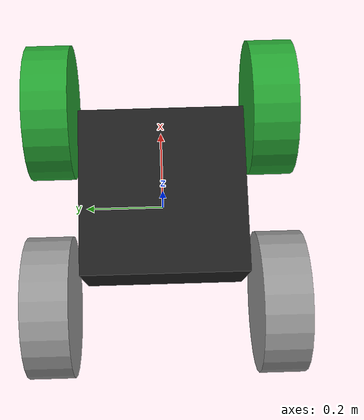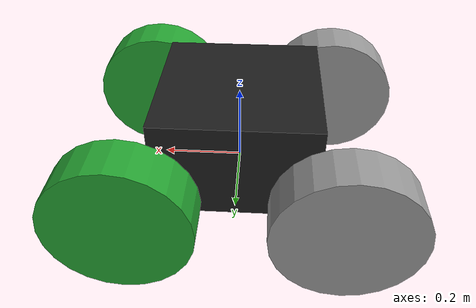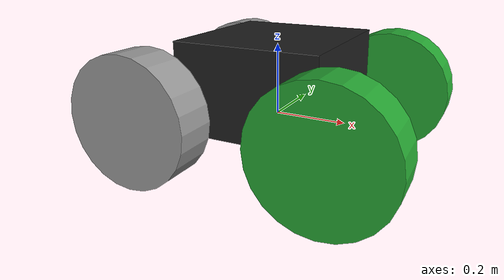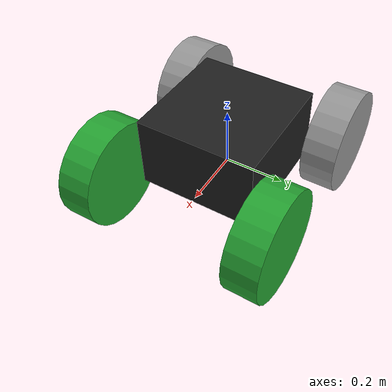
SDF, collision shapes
<?xml version="1.0" ?>
<sdf version="1.6">
  <model name="amov_car">
  <static>false</static>
    <link name="base_link">
      <pose>0 0 0.0 0 0 0</pose>
      <inertial>
        <mass>20.0</mass>
        <pose>0 0 0.0 0 0 0</pose>
        <inertia>
          <ixx>0.37</ixx>
          <ixy>0</ixy>
          <ixz>0</ixz>
          <iyy>0.37</iyy>
          <iyz>0</iyz>
          <izz>0.57</izz>
        </inertia>
      </inertial>
      <collision name="collision">
        <pose>0 0 0.1 0 0 0</pose>
        <geometry>
          <box>
            <size>0.4 0.4 0.25</size>
          </box>
        </geometry>
      </collision>
      <!-- 外观　－　底座 -->
      <visual name="base">
        <pose>0 0 0 0 0 0</pose>
        <geometry>
          <mesh>
            <uri>model://amov_car/meshes/base_link.stl</uri>
          </mesh>
        </geometry>
        <material>
          <script>
            <name>Gazebo/FlatBlack</name>
          </script>
        </material>
      </visual>
      <!--　外观　－　Top Plate -->
      <visual name="top_plate">
        <pose>0 0 0 0 0 0</pose>
        <geometry>
          <mesh>
            <uri>model://amov_car/meshes/top_plate.stl</uri>
          </mesh>
        </geometry>
        <material>
          <script>
            <name>Gazebo/Yellow</name>
          </script>
        </material>
      </visual>
      <!-- 外观　－　Front Bumper -->
      <visual name="front_bumper">
        <pose>0.47 0 0.091 0 0 0</pose>
        <geometry>
          <mesh>
            <uri>model://amov_car/meshes/bumper.stl</uri>
          </mesh>
        </geometry>
        <material>
          <script>
            <name>Gazebo/FlatBlack</name>
          </script>
        </material>
      </visual>
      <!-- 外观　－　Rear Bumper -->
      <visual name="rear_bumper">
        <pose>-0.47 0 0.091 0 0 3.141</pose>
        <geometry>
          <mesh>
            <uri>model://amov_car/meshes/bumper.stl</uri>
          </mesh>
        </geometry>
        <material>
          <script>
            <name>Gazebo/FlatBlack</name>
          </script>
        </material>
      </visual>
      <!-- 外观　－　User Rail -->
      <visual name="user_rail">
        <pose>0.272 0 0.245 0 0 0</pose>
        <geometry>
          <mesh>
            <uri>model://amov_car/meshes/user_rail.stl</uri>
          </mesh>
        </geometry>
        <material>
          <script>
            <name>Gazebo/Grey</name>
          </script>
        </material>
      </visual>
    </link>
    <!-- 关节　－　Back Left Wheel -->
    <link name="back_left_wheel">
      <pose>-0.256 0.285475 0.035 0 0 0</pose>
      <inertial>
        <mass>2.6357</mass>
        <pose>0 0 0 0 0 0</pose>
        <inertia>
          <ixx>0.0246688</ixx>
          <ixy>0</ixy>
          <ixz>0</ixz>
          <iyy>0.0246688</iyy>
          <iyz>0</iyz>
          <izz>0.0441058</izz>
        </inertia>
      </inertial>
      <collision name="back_left_wheel_collision">
        <pose>0 0 0 -1.5707 0 0</pose>
        <geometry>
          <cylinder>
            <radius>0.17775</radius>
            <length>0.1143</length>
          </cylinder>
        </geometry>
        <surface>
          <friction>
            <ode>
              <mu>1.0</mu>
              <mu2>0.45</mu2>
              <fdir1>1 0 0</fdir1>
              <slip1>0.0</slip1>
              <slip2>0.0</slip2>
            </ode>
          </friction>
        </surface>
      </collision>
      <visual name="back_left_wheel">
        <pose>0 0 0 -3.14159 0 0</pose>
        <geometry>
          <mesh>
            <uri>model://amov_car/meshes/wheel.stl</uri>
          </mesh>
        </geometry>
        <material>
          <script>
            <name>Gazebo/Grey</name>
          </script>
        </material>
      </visual>
    </link>
    <joint name="back_left_joint" type="revolute">
      <parent>base_link</parent>
      <child>back_left_wheel</child>
      <axis>
        <xyz>0 1 0</xyz>
        <use_parent_model_frame>true</use_parent_model_frame>
      </axis>
      <physics>
        <ode>
          <limit>
            <cfm>0.000000</cfm>
            <erp>0.900000</erp>
          </limit>
        </ode>
      </physics>
    </joint>
    <!-- 关节　－　Back Right Wheel -->
    <link name="back_right_wheel">
      <pose>-0.256 -0.285475 0.035 0 0 0</pose>
      <inertial>
        <mass>2.6357</mass>
        <pose>0 0 0 0 0 0</pose>
        <inertia>
          <ixx>0.0246688</ixx>
          <ixy>0</ixy>
          <ixz>0</ixz>
          <iyy>0.0246688</iyy>
          <iyz>0</iyz>
          <izz>0.0441058</izz>
        </inertia>
      </inertial>
      <collision name="back_right_wheel_collision">
        <pose>0 0 0 -1.5707 0 0</pose>
        <geometry>
          <cylinder>
            <radius>0.17775</radius>
            <length>0.1143</length>
          </cylinder>
        </geometry>
        <surface>
          <friction>
            <ode>
              <mu>100000.0</mu>
              <mu2>100000.0</mu2>
              <slip1>0.0</slip1>
              <slip2>0.0</slip2>
            </ode>
          </friction>
        </surface>
      </collision>
      <visual name="back_right_wheel">
        <pose>0 0 0 -3.14159 0 0</pose>
        <geometry>
          <mesh>
            <uri>model://amov_car/meshes/wheel.stl</uri>
          </mesh>
        </geometry>
        <material>
          <script>
            <name>Gazebo/Grey</name>
          </script>
        </material>
      </visual>
    </link>
    <joint name="back_right_joint" type="revolute">
      <parent>base_link</parent>
      <child>back_right_wheel</child>
      <axis>
        <xyz>0 1 0</xyz>
        <use_parent_model_frame>true</use_parent_model_frame>
      </axis>
      <physics>
        <ode>
          <limit>
            <cfm>0.000000</cfm>
            <erp>0.900000</erp>
          </limit>
        </ode>
      </physics>
    </joint>
    <!-- 关节　－　Front Left Wheel -->
    <link name="front_left_wheel">
      <pose>0.256 0.285475 0.035 0 0 0</pose>
      <inertial>
        <mass>2.6357</mass>
        <pose>0 0 0 0 0 0</pose>
        <inertia>
          <ixx>0.0246688</ixx>
          <ixy>0</ixy>
          <ixz>0</ixz>
          <iyy>0.0246688</iyy>
          <iyz>0</iyz>
          <izz>0.0441058</izz>
        </inertia>
      </inertial>
      <collision name="front_left_wheel_collision">
        <pose>0 0 0 -1.5707 0 0</pose>
        <geometry>
          <cylinder>
            <radius>0.17775</radius>
            <length>0.1143</length>
          </cylinder>
        </geometry>
        <surface>
          <friction>
            <ode>
              <mu>100000.0</mu>
              <mu2>100000.0</mu2>
              <slip1>0.0</slip1>
              <slip2>0.0</slip2>
            </ode>
          </friction>
        </surface>
      </collision>
      <visual name="front_left_wheel">
        <pose>0 0 0 -3.14159 0 0</pose>
        <geometry>
          <mesh>
            <uri>model://amov_car/meshes/wheel.stl</uri>
          </mesh>
        </geometry>
        <material>
          <script>
            <name>Gazebo/Green</name>
          </script>
        </material>
      </visual>
    </link>
    <joint name="front_left_joint" type="revolute">
      <parent>base_link</parent>
      <child>front_left_wheel</child>
      <axis>
        <xyz>0 1 0</xyz>
        <use_parent_model_frame>true</use_parent_model_frame>
      </axis>
      <physics>
        <ode>
          <limit>
            <cfm>0.000000</cfm>
            <erp>0.900000</erp>
          </limit>
        </ode>
      </physics>
    </joint>
    <!-- 关节　－　Front Right Wheel -->
    <link name="front_right_wheel">
      <pose>0.256 -0.285475 0.035 0 0 0</pose>
      <inertial>
        <mass>2.6357</mass>
        <pose>0 0 0 0 0 0</pose>
        <inertia>
          <ixx>0.0246688</ixx>
          <ixy>0</ixy>
          <ixz>0</ixz>
          <iyy>0.0246688</iyy>
          <iyz>0</iyz>
          <izz>0.0441058</izz>
        </inertia>
      </inertial>
      <collision name="front_right_wheel_collision">
        <pose>0 0 0 -1.5707 0 0</pose>
        <geometry>
          <cylinder>
            <radius>0.17775</radius>
            <length>0.1143</length>
          </cylinder>
        </geometry>
        <surface>
          <friction>
            <ode>
              <mu>100000.0</mu>
              <mu2>100000.0</mu2>
              <slip1>0.0</slip1>
              <slip2>0.0</slip2>
            </ode>
          </friction>
        </surface>
      </collision>
      <visual name="front_right_wheel">
        <pose>0 0 0 -3.14159 0 0</pose>
        <geometry>
          <mesh>
            <uri>model://amov_car/meshes/wheel.stl</uri>
          </mesh>
        </geometry>
        <material>
          <script>
            <name>Gazebo/Green</name>
          </script>
        </material>
      </visual>
    </link>
    <joint name="front_right_joint" type="revolute">
      <parent>base_link</parent>
      <child>front_right_wheel</child>
      <axis>
        <xyz>0 1 0</xyz>
        <use_parent_model_frame>true</use_parent_model_frame>
      </axis>
      <physics>
        <ode>
          <limit>
            <cfm>0.000000</cfm>
            <erp>0.900000</erp>
          </limit>
        </ode>
      </physics>
    </joint>
    <!-- IMU -->
    <link name='amov_car/imu_link'>
      <pose>0 0 0 0 0 0</pose>
      <inertial>
        <pose>0 0 0 0 0 0</pose>
        <mass>0.015</mass>
        <inertia>
          <ixx>1e-05</ixx>
          <ixy>0</ixy>
          <ixz>0</ixz>
          <iyy>1e-05</iyy>
          <iyz>0</iyz>
          <izz>1e-05</izz>
        </inertia>
      </inertial>
    </link>
    <joint name='amov_car/imu_joint' type='revolute'>
      <child>amov_car/imu_link</child>
      <parent>base_link</parent>
      <axis>
        <xyz>1 0 0</xyz>
        <limit>
          <lower>0</lower>
          <upper>0</upper>
          <effort>0</effort>
          <velocity>0</velocity>
        </limit>
        <dynamics>
          <spring_reference>0</spring_reference>
          <spring_stiffness>0</spring_stiffness>
        </dynamics>
        <use_parent_model_frame>1</use_parent_model_frame>
      </axis>
    </joint>
    <!-- 气压计插件 -->
    <plugin name='barometer_plugin' filename='libgazebo_barometer_plugin.so'>
      <robotNamespace/>
      <pubRate>10</pubRate>
      <baroTopic>/baro</baroTopic>
    </plugin>
    <!-- IMU插件 -->
    <plugin name='gazebo_imu_plugin' filename='libgazebo_imu_plugin.so'>
      <robotNamespace></robotNamespace>
      <linkName>amov_car/imu_link</linkName>
      <imuTopic>/imu</imuTopic>
      <gyroscopeNoiseDensity>0.0003394</gyroscopeNoiseDensity>
      <gyroscopeRandomWalk>3.8785e-05</gyroscopeRandomWalk>
      <gyroscopeBiasCorrelationTime>1000.0</gyroscopeBiasCorrelationTime>
      <gyroscopeTurnOnBiasSigma>0.0087</gyroscopeTurnOnBiasSigma>
      <accelerometerNoiseDensity>0.004</accelerometerNoiseDensity>
      <accelerometerRandomWalk>0.006</accelerometerRandomWalk>
      <accelerometerBiasCorrelationTime>300.0</accelerometerBiasCorrelationTime>
      <accelerometerTurnOnBiasSigma>0.196</accelerometerTurnOnBiasSigma>
    </plugin>
    <!-- GPS插件 -->
    <plugin name="gps_plugin" filename="libgazebo_gps_plugin.so">
	    <robotNamespace></robotNamespace>
	    <gpsNoise>false</gpsNoise>
    </plugin>
    <!-- 磁力计插件 -->
    <plugin name='magnetometer_plugin' filename='libgazebo_magnetometer_plugin.so'>
      <robotNamespace/>
      <pubRate>20</pubRate>
      <noiseDensity>0.0004</noiseDensity>
      <randomWalk>6.4e-06</randomWalk>
      <biasCorrelationTime>600</biasCorrelationTime>
      <magTopic>/mag</magTopic>
    </plugin>
    <!-- plugins: mavlink plugin -->
    <!-- 使用mavlink消息交互的插件 -->
    <!-- 发布电机参考速度，来自飞控 -->
    <!-- 订阅各传感器数据，发送至飞控 -->
    <plugin name='mavlink_interface' filename='libgazebo_mavlink_interface.so'>
      <robotNamespace></robotNamespace>
      <imuSubTopic>/imu</imuSubTopic>
      <gpsSubTopic>/gps</gpsSubTopic>
      <magSubTopic>/mag</magSubTopic>
      <baroSubTopic>/baro</baroSubTopic>
      <mavlink_addr>INADDR_ANY</mavlink_addr>
      <mavlink_udp_port>14560</mavlink_udp_port>
      <serialEnabled>false</serialEnabled>
      <serialDevice>/dev/ttyACM0</serialDevice>
      <baudRate>921600</baudRate>
      <qgc_addr>INADDR_ANY</qgc_addr>
      <qgc_udp_port>14550</qgc_udp_port>
      <hil_mode>false</hil_mode>
      <hil_state_level>false</hil_state_level>
      <enable_lockstep>true</enable_lockstep>
      <use_tcp>true</use_tcp>
      <motorSpeedCommandPubTopic>/gazebo/command/motor_speed</motorSpeedCommandPubTopic>
      <control_channels>
        <channel name="front_left_wheel_drive">
          <input_index>0</input_index>
          <input_offset>0</input_offset>
          <input_scaling>10</input_scaling>
          <zero_position_disarmed>0</zero_position_disarmed>
          <zero_position_armed>0</zero_position_armed>
          <joint_control_type>velocity</joint_control_type>
          <joint_name>front_left_joint</joint_name>
          <joint_control_pid>
            <p>10</p>
            <i>2</i>
            <d>0</d>
            <iMax>800</iMax>
            <iMin>-800</iMin>
            <cmdMax>1200</cmdMax>
            <cmdMin>-1200</cmdMin>
          </joint_control_pid>
        </channel>
        <channel name="back_left_wheel_drive">
          <input_index>0</input_index>
          <input_offset>0</input_offset>
          <input_scaling>10</input_scaling>
          <zero_position_disarmed>0</zero_position_disarmed>
          <zero_position_armed>0</zero_position_armed>
          <joint_control_type>velocity</joint_control_type>
          <joint_name>back_left_joint</joint_name>
          <joint_control_pid>
            <p>10</p>
            <i>2</i>
            <d>0</d>
            <iMax>800</iMax>
            <iMin>-800</iMin>
            <cmdMax>1200</cmdMax>
            <cmdMin>-1200</cmdMin>
          </joint_control_pid>
        </channel>
        <channel name="front_right_wheel_drive">
          <input_index>1</input_index>
          <input_offset>0</input_offset>
          <input_scaling>10</input_scaling>
          <zero_position_disarmed>0</zero_position_disarmed>
          <zero_position_armed>0</zero_position_armed>
          <joint_control_type>velocity</joint_control_type>
          <joint_name>front_right_joint</joint_name>
          <joint_control_pid>
            <p>10</p>
            <i>2</i>
            <d>0</d>
            <iMax>800</iMax>
            <iMin>-800</iMin>
            <cmdMax>1200</cmdMax>
            <cmdMin>-1200</cmdMin>
          </joint_control_pid>
        </channel>
        <channel name="back_right_wheel_drive">
          <input_index>1</input_index>
          <input_offset>0</input_offset>
          <input_scaling>10</input_scaling>
          <zero_position_disarmed>0</zero_position_disarmed>
          <zero_position_armed>0</zero_position_armed>
          <joint_control_type>velocity</joint_control_type>
          <joint_name>back_right_joint</joint_name>
          <joint_control_pid>
            <p>10</p>
            <i>2</i>
            <d>0</d>
            <iMax>800</iMax>
            <iMin>-800</iMin>
            <cmdMax>1200</cmdMax>
            <cmdMin>-1200</cmdMin>
          </joint_control_pid>
        </channel>
     </control_channels>
    </plugin>
    <!-- plugins: libgazebo_ros_p3d -->
    <!-- 发布真值,模拟vicon系统 -->
    <plugin name="p3d_base_controller" filename="libgazebo_ros_p3d.so">
      <alwaysOn>true</alwaysOn>
      <updateRate>50.0</updateRate>
      <bodyName>base_link</bodyName>
      <topicName>/prometheus/ground_truth/p300_basic</topicName>
      <gaussianNoise>0.00</gaussianNoise>
      <frameName>world</frameName>
      <xyzOffsets>0 0 0</xyzOffsets>
      <rpyOffsets>0 0 0</rpyOffsets>
    </plugin>
  </model>
</sdf>
